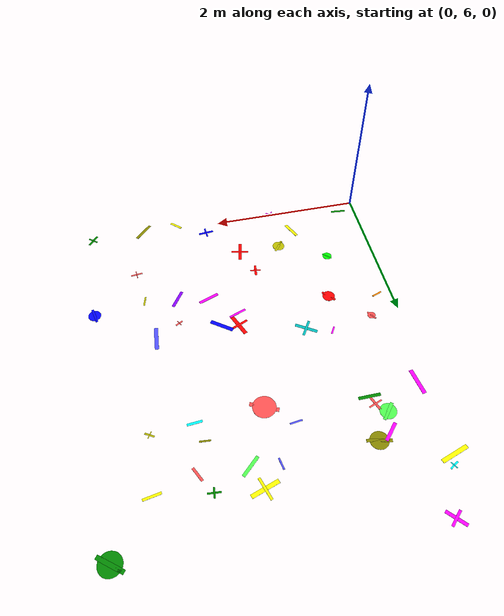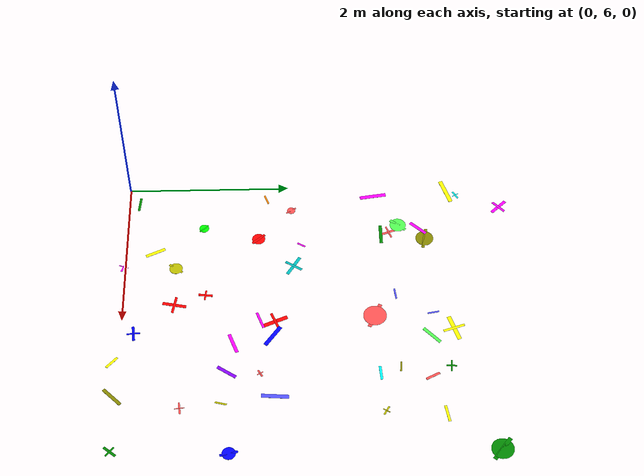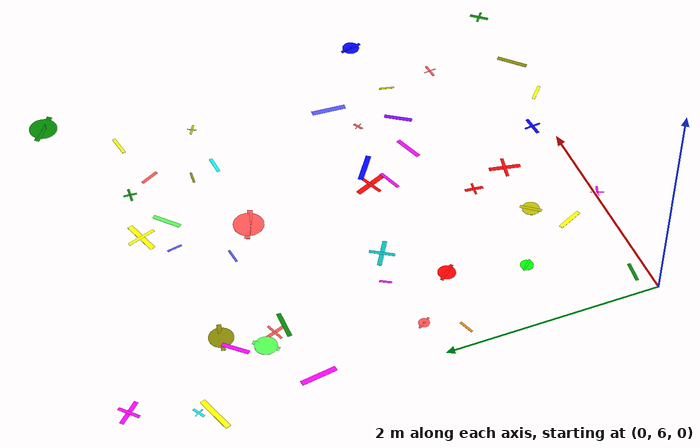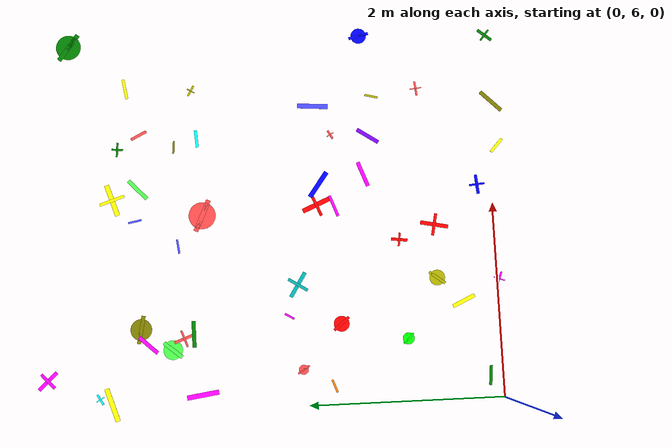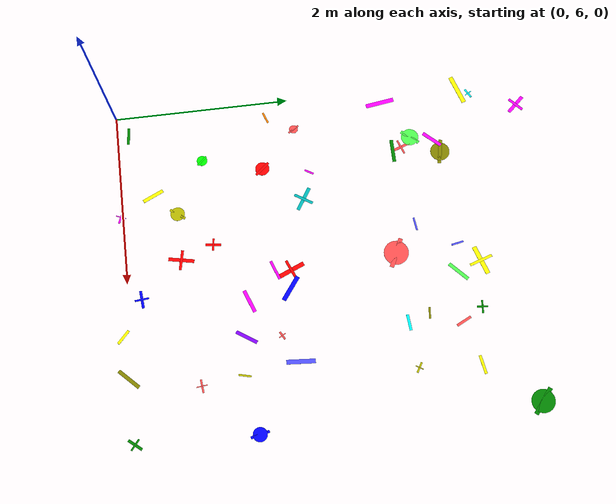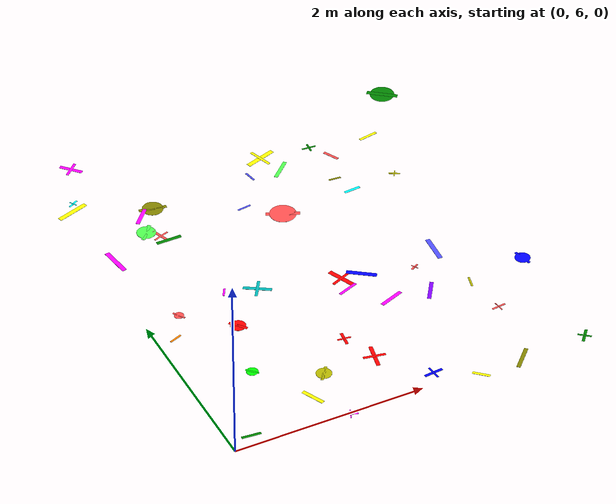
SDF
<sdf version="1.6">
 <world name="default">
  <model name="letter_N_1168">
   <static>true</static>
   <pose>0.23 6.13 0.006 0 0 6.186</pose>
   <link name="link">
    <visual name="visual">
     <geometry><box><size>0.20 0.03 0.002</size></box></geometry>
     <material>
      <ambient>0.0 0.5 0.0 1</ambient>
      <diffuse>0.0 0.5 0.0 1</diffuse>
      <specular>0.1 0.1 0.1 1</specular>
     </material>
    </visual>
   </link>
  </model>
  <model name="letter_X_1172">
   <static>true</static>
   <pose>0.19 7.73 0.010 0 0 3.495</pose>
   <link name="link">
    <visual name="visual">
     <geometry><box><size>0.14 0.02 0.002</size></box></geometry>
     <material>
      <ambient>1.0 0.5 0.0 1</ambient>
      <diffuse>1.0 0.5 0.0 1</diffuse>
      <specular>0.1 0.1 0.1 1</specular>
     </material>
    </visual>
   </link>
  </model>
  <model name="letter_Q_1173">
   <static>true</static>
   <pose>0.37 8.04 0.004 0 0 5.290</pose>
   <link name="link">
    <visual name="visual">
     <geometry><box><size>0.14 0.02 0.002</size></box></geometry>
     <material>
      <ambient>1.0 0.3 0.3 1</ambient>
      <diffuse>1.0 0.3 0.3 1</diffuse>
      <specular>0.1 0.1 0.1 1</specular>
     </material>
    </visual>
    <visual name="visual2">
     <geometry><cylinder><radius>0.05</radius><length>0.002</length></cylinder></geometry>
     <material><ambient>1.0 0.3 0.3 1</ambient><diffuse>1.0 0.3 0.3 1</diffuse></material>
    </visual>
   </link>
  </model>
  <model name="letter_P_1177">
   <static>true</static>
   <pose>0.16 9.08 0.005 0 0 4.855</pose>
   <link name="link">
    <visual name="visual">
     <geometry><box><size>0.33 0.05 0.002</size></box></geometry>
     <material>
      <ambient>1.0 0.0 1.0 1</ambient>
      <diffuse>1.0 0.0 1.0 1</diffuse>
      <specular>0.1 0.1 0.1 1</specular>
     </material>
    </visual>
   </link>
  </model>
  <model name="letter_U_1179">
   <static>true</static>
   <pose>0.10 10.01 0.005 0 0 3.457</pose>
   <link name="link">
    <visual name="visual">
     <geometry><box><size>0.35 0.05 0.002</size></box></geometry>
     <material>
      <ambient>1.0 1.0 0.0 1</ambient>
      <diffuse>1.0 1.0 0.0 1</diffuse>
      <specular>0.1 0.1 0.1 1</specular>
     </material>
    </visual>
   </link>
  </model>
  <model name="letter_H_1180">
   <static>true</static>
   <pose>0.16 10.13 0.004 0 0 3.666</pose>
   <link name="link">
    <visual name="visual">
     <geometry><box><size>0.12 0.02 0.002</size></box></geometry>
     <material>
      <ambient>0.0 1.0 1.0 1</ambient>
      <diffuse>0.0 1.0 1.0 1</diffuse>
      <specular>0.1 0.1 0.1 1</specular>
     </material>
    </visual>
    <visual name="visual2">
     <pose>0 0 0.001 0 0 1.57</pose>
     <geometry><box><size>0.09 0.01 0.001</size></box></geometry>
     <material><ambient>0.0 1.0 1.0 1</ambient><diffuse>0.0 1.0 1.0 1</diffuse></material>
    </visual>
   </link>
  </model>
  <model name="letter_I_1181">
   <static>true</static>
   <pose>0.37 10.66 0.008 0 0 2.318</pose>
   <link name="link">
    <visual name="visual">
     <geometry><box><size>0.25 0.04 0.002</size></box></geometry>
     <material>
      <ambient>1.0 0.0 1.0 1</ambient>
      <diffuse>1.0 0.0 1.0 1</diffuse>
      <specular>0.1 0.1 0.1 1</specular>
     </material>
    </visual>
    <visual name="visual2">
     <pose>0 0 0.001 0 0 1.57</pose>
     <geometry><box><size>0.20 0.03 0.001</size></box></geometry>
     <material><ambient>1.0 0.0 1.0 1</ambient><diffuse>1.0 0.0 1.0 1</diffuse></material>
    </visual>
   </link>
  </model>
  <model name="letter_L_1225">
   <static>true</static>
   <pose>1.21 5.98 0.006 0 0 5.918</pose>
   <link name="link">
    <visual name="visual">
     <geometry><box><size>0.15 0.02 0.002</size></box></geometry>
     <material>
      <ambient>1.0 0.0 1.0 1</ambient>
      <diffuse>1.0 0.0 1.0 1</diffuse>
      <specular>0.1 0.1 0.1 1</specular>
     </material>
    </visual>
    <visual name="visual2">
     <pose>0 0 0.001 0 0 1.57</pose>
     <geometry><box><size>0.12 0.01 0.001</size></box></geometry>
     <material><ambient>1.0 0.0 1.0 1</ambient><diffuse>1.0 0.0 1.0 1</diffuse></material>
    </visual>
   </link>
  </model>
  <model name="letter_W_1226">
   <static>true</static>
   <pose>1.00 6.36 0.004 0 0 5.146</pose>
   <link name="link">
    <visual name="visual">
     <geometry><box><size>0.25 0.04 0.002</size></box></geometry>
     <material>
      <ambient>1.0 1.0 0.0 1</ambient>
      <diffuse>1.0 1.0 0.0 1</diffuse>
      <specular>0.1 0.1 0.1 1</specular>
     </material>
    </visual>
   </link>
  </model>
  <model name="letter_Q_1227">
   <static>true</static>
   <pose>1.25 6.62 0.005 0 0 4.067</pose>
   <link name="link">
    <visual name="visual">
     <geometry><box><size>0.20 0.03 0.002</size></box></geometry>
     <material>
      <ambient>0.7 0.7 0.0 1</ambient>
      <diffuse>0.7 0.7 0.0 1</diffuse>
      <specular>0.1 0.1 0.1 1</specular>
     </material>
    </visual>
    <visual name="visual2">
     <geometry><cylinder><radius>0.08</radius><length>0.002</length></cylinder></geometry>
     <material><ambient>0.7 0.7 0.0 1</ambient><diffuse>0.7 0.7 0.0 1</diffuse></material>
    </visual>
   </link>
  </model>
  <model name="letter_C_1228">
   <static>true</static>
   <pose>0.64 6.95 0.012 0 0 2.322</pose>
   <link name="link">
    <visual name="visual">
     <geometry><box><size>0.14 0.02 0.002</size></box></geometry>
     <material>
      <ambient>0.0 1.0 0.0 1</ambient>
      <diffuse>0.0 1.0 0.0 1</diffuse>
      <specular>0.1 0.1 0.1 1</specular>
     </material>
    </visual>
    <visual name="visual2">
     <geometry><cylinder><radius>0.06</radius><length>0.002</length></cylinder></geometry>
     <material><ambient>0.0 1.0 0.0 1</ambient><diffuse>0.0 1.0 0.0 1</diffuse></material>
    </visual>
   </link>
  </model>
  <model name="letter_Q_1229">
   <static>true</static>
   <pose>0.82 7.63 0.011 0 0 5.411</pose>
   <link name="link">
    <visual name="visual">
     <geometry><box><size>0.20 0.03 0.002</size></box></geometry>
     <material>
      <ambient>1.0 0.0 0.0 1</ambient>
      <diffuse>1.0 0.0 0.0 1</diffuse>
      <specular>0.1 0.1 0.1 1</specular>
     </material>
    </visual>
    <visual name="visual2">
     <geometry><cylinder><radius>0.08</radius><length>0.002</length></cylinder></geometry>
     <material><ambient>1.0 0.0 0.0 1</ambient><diffuse>1.0 0.0 0.0 1</diffuse></material>
    </visual>
   </link>
  </model>
  <model name="letter_T_1230">
   <static>true</static>
   <pose>1.24 8.06 0.006 0 0 5.720</pose>
   <link name="link">
    <visual name="visual">
     <geometry><box><size>0.29 0.04 0.002</size></box></geometry>
     <material>
      <ambient>0.0 0.7 0.7 1</ambient>
      <diffuse>0.0 0.7 0.7 1</diffuse>
      <specular>0.1 0.1 0.1 1</specular>
     </material>
    </visual>
    <visual name="visual2">
     <pose>0 0 0.001 0 0 1.57</pose>
     <geometry><box><size>0.23 0.03 0.001</size></box></geometry>
     <material><ambient>0.0 0.7 0.7 1</ambient><diffuse>0.0 0.7 0.7 1</diffuse></material>
    </visual>
   </link>
  </model>
  <model name="letter_X_1231">
   <static>true</static>
   <pose>0.92 8.16 0.006 0 0 4.179</pose>
   <link name="link">
    <visual name="visual">
     <geometry><box><size>0.11 0.02 0.002</size></box></geometry>
     <material>
      <ambient>1.0 0.0 1.0 1</ambient>
      <diffuse>1.0 0.0 1.0 1</diffuse>
      <specular>0.1 0.1 0.1 1</specular>
     </material>
    </visual>
   </link>
  </model>
  <model name="letter_M_1232">
   <static>true</static>
   <pose>0.78 9.15 0.013 0 0 0.005</pose>
   <link name="link">
    <visual name="visual">
     <geometry><box><size>0.27 0.04 0.002</size></box></geometry>
     <material>
      <ambient>0.0 0.5 0.0 1</ambient>
      <diffuse>0.0 0.5 0.0 1</diffuse>
      <specular>0.1 0.1 0.1 1</specular>
     </material>
    </visual>
   </link>
  </model>
  <model name="letter_O_1233">
   <static>true</static>
   <pose>0.63 9.37 0.003 0 0 4.013</pose>
   <link name="link">
    <visual name="visual">
     <geometry><box><size>0.24 0.04 0.002</size></box></geometry>
     <material>
      <ambient>0.3 1.0 0.3 1</ambient>
      <diffuse>0.3 1.0 0.3 1</diffuse>
      <specular>0.1 0.1 0.1 1</specular>
     </material>
    </visual>
    <visual name="visual2">
     <geometry><cylinder><radius>0.10</radius><length>0.002</length></cylinder></geometry>
     <material><ambient>0.3 1.0 0.3 1</ambient><diffuse>0.3 1.0 0.3 1</diffuse></material>
    </visual>
   </link>
  </model>
  <model name="letter_H_1234">
   <static>true</static>
   <pose>0.74 9.25 0.003 0 0 1.925</pose>
   <link name="link">
    <visual name="visual">
     <geometry><box><size>0.22 0.03 0.002</size></box></geometry>
     <material>
      <ambient>1.0 0.3 0.3 1</ambient>
      <diffuse>1.0 0.3 0.3 1</diffuse>
      <specular>0.1 0.1 0.1 1</specular>
     </material>
    </visual>
    <visual name="visual2">
     <pose>0 0 0.001 0 0 1.57</pose>
     <geometry><box><size>0.18 0.02 0.001</size></box></geometry>
     <material><ambient>1.0 0.3 0.3 1</ambient><diffuse>1.0 0.3 0.3 1</diffuse></material>
    </visual>
   </link>
  </model>
  <model name="letter_R_1235">
   <static>true</static>
   <pose>0.69 9.62 0.010 0 0 3.971</pose>
   <link name="link">
    <visual name="visual">
     <geometry><box><size>0.25 0.04 0.002</size></box></geometry>
     <material>
      <ambient>1.0 0.0 1.0 1</ambient>
      <diffuse>1.0 0.0 1.0 1</diffuse>
      <specular>0.1 0.1 0.1 1</specular>
     </material>
    </visual>
   </link>
  </model>
  <model name="letter_O_1236">
   <static>true</static>
   <pose>0.85 9.69 0.007 0 0 2.945</pose>
   <link name="link">
    <visual name="visual">
     <geometry><box><size>0.29 0.04 0.002</size></box></geometry>
     <material>
      <ambient>0.5 0.5 0.0 1</ambient>
      <diffuse>0.5 0.5 0.0 1</diffuse>
      <specular>0.1 0.1 0.1 1</specular>
     </material>
    </visual>
    <visual name="visual2">
     <geometry><cylinder><radius>0.11</radius><length>0.002</length></cylinder></geometry>
     <material><ambient>0.5 0.5 0.0 1</ambient><diffuse>0.5 0.5 0.0 1</diffuse></material>
    </visual>
   </link>
  </model>
  <model name="letter_H_1288">
   <static>true</static>
   <pose>2.20 6.15 0.006 0 0 3.232</pose>
   <link name="link">
    <visual name="visual">
     <geometry><box><size>0.20 0.03 0.002</size></box></geometry>
     <material>
      <ambient>0.0 0.0 1.0 1</ambient>
      <diffuse>0.0 0.0 1.0 1</diffuse>
      <specular>0.1 0.1 0.1 1</specular>
     </material>
    </visual>
    <visual name="visual2">
     <pose>0 0 0.001 0 0 1.57</pose>
     <geometry><box><size>0.16 0.02 0.001</size></box></geometry>
     <material><ambient>0.0 0.0 1.0 1</ambient><diffuse>0.0 0.0 1.0 1</diffuse></material>
    </visual>
   </link>
  </model>
  <model name="letter_A_1291">
   <static>true</static>
   <pose>1.66 6.99 0.006 0 0 4.591</pose>
   <link name="link">
    <visual name="visual">
     <geometry><box><size>0.17 0.03 0.002</size></box></geometry>
     <material>
      <ambient>1.0 0.0 0.0 1</ambient>
      <diffuse>1.0 0.0 0.0 1</diffuse>
      <specular>0.1 0.1 0.1 1</specular>
     </material>
    </visual>
    <visual name="visual2">
     <pose>0 0 0.001 0 0 1.57</pose>
     <geometry><box><size>0.14 0.02 0.001</size></box></geometry>
     <material><ambient>1.0 0.0 0.0 1</ambient><diffuse>1.0 0.0 0.0 1</diffuse></material>
    </visual>
   </link>
  </model>
  <model name="letter_A_1292">
   <static>true</static>
   <pose>1.80 6.62 0.011 0 0 4.514</pose>
   <link name="link">
    <visual name="visual">
     <geometry><box><size>0.29 0.04 0.002</size></box></geometry>
     <material>
      <ambient>1.0 0.0 0.0 1</ambient>
      <diffuse>1.0 0.0 0.0 1</diffuse>
      <specular>0.1 0.1 0.1 1</specular>
     </material>
    </visual>
    <visual name="visual2">
     <pose>0 0 0.001 0 0 1.57</pose>
     <geometry><box><size>0.23 0.03 0.001</size></box></geometry>
     <material><ambient>1.0 0.0 0.0 1</ambient><diffuse>1.0 0.0 0.0 1</diffuse></material>
    </visual>
   </link>
  </model>
  <model name="letter_M_1293">
   <static>true</static>
   <pose>2.36 7.33 0.003 0 0 3.499</pose>
   <link name="link">
    <visual name="visual">
     <geometry><box><size>0.27 0.04 0.002</size></box></geometry>
     <material>
      <ambient>1.0 0.0 1.0 1</ambient>
      <diffuse>1.0 0.0 1.0 1</diffuse>
      <specular>0.1 0.1 0.1 1</specular>
     </material>
    </visual>
   </link>
  </model>
  <model name="letter_X_1294">
   <static>true</static>
   <pose>2.27 7.80 0.009 0 0 5.653</pose>
   <link name="link">
    <visual name="visual">
     <geometry><box><size>0.31 0.05 0.002</size></box></geometry>
     <material>
      <ambient>0.0 0.0 1.0 1</ambient>
      <diffuse>0.0 0.0 1.0 1</diffuse>
      <specular>0.1 0.1 0.1 1</specular>
     </material>
    </visual>
   </link>
  </model>
  <model name="letter_T_1295">
   <static>true</static>
   <pose>2.06 7.83 0.003 0 0 1.974</pose>
   <link name="link">
    <visual name="visual">
     <geometry><box><size>0.31 0.05 0.002</size></box></geometry>
     <material>
      <ambient>1.0 0.0 0.0 1</ambient>
      <diffuse>1.0 0.0 0.0 1</diffuse>
      <specular>0.1 0.1 0.1 1</specular>
     </material>
    </visual>
    <visual name="visual2">
     <pose>0 0 0.001 0 0 1.57</pose>
     <geometry><box><size>0.25 0.03 0.001</size></box></geometry>
     <material><ambient>1.0 0.0 0.0 1</ambient><diffuse>1.0 0.0 0.0 1</diffuse></material>
    </visual>
   </link>
  </model>
  <model name="letter_N_1296">
   <static>true</static>
   <pose>2.04 7.65 0.007 0 0 3.497</pose>
   <link name="link">
    <visual name="visual">
     <geometry><box><size>0.23 0.03 0.002</size></box></geometry>
     <material>
      <ambient>1.0 0.0 1.0 1</ambient>
      <diffuse>1.0 0.0 1.0 1</diffuse>
      <specular>0.1 0.1 0.1 1</specular>
     </material>
    </visual>
   </link>
  </model>
  <model name="letter_G_1297">
   <static>true</static>
   <pose>2.00 9.02 0.004 0 0 2.717</pose>
   <link name="link">
    <visual name="visual">
     <geometry><box><size>0.35 0.05 0.002</size></box></geometry>
     <material>
      <ambient>1.0 0.3 0.3 1</ambient>
      <diffuse>1.0 0.3 0.3 1</diffuse>
      <specular>0.1 0.1 0.1 1</specular>
     </material>
    </visual>
    <visual name="visual2">
     <geometry><cylinder><radius>0.14</radius><length>0.002</length></cylinder></geometry>
     <material><ambient>1.0 0.3 0.3 1</ambient><diffuse>1.0 0.3 0.3 1</diffuse></material>
    </visual>
   </link>
  </model>
  <model name="letter_X_1298">
   <static>true</static>
   <pose>1.69 9.28 0.008 0 0 3.265</pose>
   <link name="link">
    <visual name="visual">
     <geometry><box><size>0.15 0.02 0.002</size></box></geometry>
     <material>
      <ambient>0.3 0.3 1.0 1</ambient>
      <diffuse>0.3 0.3 1.0 1</diffuse>
      <specular>0.1 0.1 0.1 1</specular>
     </material>
    </visual>
   </link>
  </model>
  <model name="letter_V_1299">
   <static>true</static>
   <pose>1.97 9.72 0.004 0 0 4.895</pose>
   <link name="link">
    <visual name="visual">
     <geometry><box><size>0.14 0.02 0.002</size></box></geometry>
     <material>
      <ambient>0.3 0.3 1.0 1</ambient>
      <diffuse>0.3 0.3 1.0 1</diffuse>
      <specular>0.1 0.1 0.1 1</specular>
     </material>
    </visual>
   </link>
  </model>
  <model name="letter_I_1300">
   <static>true</static>
   <pose>2.20 9.95 0.005 0 0 3.460</pose>
   <link name="link">
    <visual name="visual">
     <geometry><box><size>0.34 0.05 0.002</size></box></geometry>
     <material>
      <ambient>1.0 1.0 0.0 1</ambient>
      <diffuse>1.0 1.0 0.0 1</diffuse>
      <specular>0.1 0.1 0.1 1</specular>
     </material>
    </visual>
    <visual name="visual2">
     <pose>0 0 0.001 0 0 1.57</pose>
     <geometry><box><size>0.27 0.03 0.001</size></box></geometry>
     <material><ambient>1.0 1.0 0.0 1</ambient><diffuse>1.0 1.0 0.0 1</diffuse></material>
    </visual>
   </link>
  </model>
  <model name="letter_Y_1301">
   <static>true</static>
   <pose>2.30 9.68 0.009 0 0 3.893</pose>
   <link name="link">
    <visual name="visual">
     <geometry><box><size>0.27 0.04 0.002</size></box></geometry>
     <material>
      <ambient>0.3 1.0 0.3 1</ambient>
      <diffuse>0.3 1.0 0.3 1</diffuse>
      <specular>0.1 0.1 0.1 1</specular>
     </material>
    </visual>
   </link>
  </model>
  <model name="letter_N_1361">
   <static>true</static>
   <pose>3.07 5.95 0.009 0 0 0.793</pose>
   <link name="link">
    <visual name="visual">
     <geometry><box><size>0.29 0.04 0.002</size></box></geometry>
     <material>
      <ambient>0.5 0.5 0.0 1</ambient>
      <diffuse>0.5 0.5 0.0 1</diffuse>
      <specular>0.1 0.1 0.1 1</specular>
     </material>
    </visual>
   </link>
  </model>
  <model name="letter_S_1362">
   <static>true</static>
   <pose>2.60 5.92 0.007 0 0 2.397</pose>
   <link name="link">
    <visual name="visual">
     <geometry><box><size>0.18 0.03 0.002</size></box></geometry>
     <material>
      <ambient>1.0 1.0 0.0 1</ambient>
      <diffuse>1.0 1.0 0.0 1</diffuse>
      <specular>0.1 0.1 0.1 1</specular>
     </material>
    </visual>
   </link>
  </model>
  <model name="letter_F_1363">
   <static>true</static>
   <pose>3.24 6.73 0.012 0 0 0.110</pose>
   <link name="link">
    <visual name="visual">
     <geometry><box><size>0.15 0.02 0.002</size></box></geometry>
     <material>
      <ambient>1.0 0.3 0.3 1</ambient>
      <diffuse>1.0 0.3 0.3 1</diffuse>
      <specular>0.1 0.1 0.1 1</specular>
     </material>
    </visual>
    <visual name="visual2">
     <pose>0 0 0.001 0 0 1.57</pose>
     <geometry><box><size>0.12 0.01 0.001</size></box></geometry>
     <material><ambient>1.0 0.3 0.3 1</ambient><diffuse>1.0 0.3 0.3 1</diffuse></material>
    </visual>
   </link>
  </model>
  <model name="letter_P_1364">
   <static>true</static>
   <pose>2.76 7.26 0.007 0 0 4.125</pose>
   <link name="link">
    <visual name="visual">
     <geometry><box><size>0.26 0.04 0.002</size></box></geometry>
     <material>
      <ambient>0.5 0.0 1.0 1</ambient>
      <diffuse>0.5 0.0 1.0 1</diffuse>
      <specular>0.1 0.1 0.1 1</specular>
     </material>
    </visual>
   </link>
  </model>
  <model name="letter_K_1365">
   <static>true</static>
   <pose>3.18 7.20 0.005 0 0 1.325</pose>
   <link name="link">
    <visual name="visual">
     <geometry><box><size>0.14 0.02 0.002</size></box></geometry>
     <material>
      <ambient>0.7 0.7 0.0 1</ambient>
      <diffuse>0.7 0.7 0.0 1</diffuse>
      <specular>0.1 0.1 0.1 1</specular>
     </material>
    </visual>
   </link>
  </model>
  <model name="letter_R_1366">
   <static>true</static>
   <pose>3.10 7.82 0.008 0 0 1.498</pose>
   <link name="link">
    <visual name="visual">
     <geometry><box><size>0.32 0.05 0.002</size></box></geometry>
     <material>
      <ambient>0.3 0.3 1.0 1</ambient>
      <diffuse>0.3 0.3 1.0 1</diffuse>
      <specular>0.1 0.1 0.1 1</specular>
     </material>
    </visual>
   </link>
  </model>
  <model name="letter_H_1367">
   <static>true</static>
   <pose>2.79 7.65 0.012 0 0 0.515</pose>
   <link name="link">
    <visual name="visual">
     <geometry><box><size>0.10 0.02 0.002</size></box></geometry>
     <material>
      <ambient>1.0 0.3 0.3 1</ambient>
      <diffuse>1.0 0.3 0.3 1</diffuse>
      <specular>0.1 0.1 0.1 1</specular>
     </material>
    </visual>
    <visual name="visual2">
     <pose>0 0 0.001 0 0 1.57</pose>
     <geometry><box><size>0.08 0.01 0.001</size></box></geometry>
     <material><ambient>1.0 0.3 0.3 1</ambient><diffuse>1.0 0.3 0.3 1</diffuse></material>
    </visual>
   </link>
  </model>
  <model name="letter_D_1368">
   <static>true</static>
   <pose>2.81 9.05 0.006 0 0 3.223</pose>
   <link name="link">
    <visual name="visual">
     <geometry><box><size>0.18 0.03 0.002</size></box></geometry>
     <material>
      <ambient>0.0 1.0 1.0 1</ambient>
      <diffuse>0.0 1.0 1.0 1</diffuse>
      <specular>0.1 0.1 0.1 1</specular>
     </material>
    </visual>
   </link>
  </model>
  <model name="letter_I_1369">
   <static>true</static>
   <pose>3.32 9.09 0.010 0 0 2.605</pose>
   <link name="link">
    <visual name="visual">
     <geometry><box><size>0.12 0.02 0.002</size></box></geometry>
     <material>
      <ambient>0.7 0.7 0.0 1</ambient>
      <diffuse>0.7 0.7 0.0 1</diffuse>
      <specular>0.1 0.1 0.1 1</specular>
     </material>
    </visual>
    <visual name="visual2">
     <pose>0 0 0.001 0 0 1.57</pose>
     <geometry><box><size>0.09 0.01 0.001</size></box></geometry>
     <material><ambient>0.7 0.7 0.0 1</ambient><diffuse>0.7 0.7 0.0 1</diffuse></material>
    </visual>
   </link>
  </model>
  <model name="letter_R_1370">
   <static>true</static>
   <pose>2.73 9.29 0.009 0 0 3.057</pose>
   <link name="link">
    <visual name="visual">
     <geometry><box><size>0.13 0.02 0.002</size></box></geometry>
     <material>
      <ambient>0.5 0.5 0.0 1</ambient>
      <diffuse>0.5 0.5 0.0 1</diffuse>
      <specular>0.1 0.1 0.1 1</specular>
     </material>
    </visual>
   </link>
  </model>
  <model name="letter_K_1371">
   <static>true</static>
   <pose>2.87 9.65 0.013 0 0 2.035</pose>
   <link name="link">
    <visual name="visual">
     <geometry><box><size>0.18 0.03 0.002</size></box></geometry>
     <material>
      <ambient>1.0 0.3 0.3 1</ambient>
      <diffuse>1.0 0.3 0.3 1</diffuse>
      <specular>0.1 0.1 0.1 1</specular>
     </material>
    </visual>
   </link>
  </model>
  <model name="letter_S_1372">
   <static>true</static>
   <pose>3.37 9.78 0.007 0 0 3.311</pose>
   <link name="link">
    <visual name="visual">
     <geometry><box><size>0.21 0.03 0.002</size></box></geometry>
     <material>
      <ambient>1.0 1.0 0.0 1</ambient>
      <diffuse>1.0 1.0 0.0 1</diffuse>
      <specular>0.1 0.1 0.1 1</specular>
     </material>
    </visual>
   </link>
  </model>
  <model name="letter_F_1373">
   <static>true</static>
   <pose>2.73 9.88 0.008 0 0 3.059</pose>
   <link name="link">
    <visual name="visual">
     <geometry><box><size>0.15 0.02 0.002</size></box></geometry>
     <material>
      <ambient>0.0 0.5 0.0 1</ambient>
      <diffuse>0.0 0.5 0.0 1</diffuse>
      <specular>0.1 0.1 0.1 1</specular>
     </material>
    </visual>
    <visual name="visual2">
     <pose>0 0 0.001 0 0 1.57</pose>
     <geometry><box><size>0.12 0.02 0.001</size></box></geometry>
     <material><ambient>0.0 0.5 0.0 1</ambient><diffuse>0.0 0.5 0.0 1</diffuse></material>
    </visual>
   </link>
  </model>
  <model name="letter_I_1437">
   <static>true</static>
   <pose>3.78 5.97 0.006 0 0 0.888</pose>
   <link name="link">
    <visual name="visual">
     <geometry><box><size>0.18 0.03 0.002</size></box></geometry>
     <material>
      <ambient>0.0 0.5 0.0 1</ambient>
      <diffuse>0.0 0.5 0.0 1</diffuse>
      <specular>0.1 0.1 0.1 1</specular>
     </material>
    </visual>
    <visual name="visual2">
     <pose>0 0 0.001 0 0 1.57</pose>
     <geometry><box><size>0.14 0.02 0.001</size></box></geometry>
     <material><ambient>0.0 0.5 0.0 1</ambient><diffuse>0.0 0.5 0.0 1</diffuse></material>
    </visual>
   </link>
  </model>
  <model name="letter_Q_1440">
   <static>true</static>
   <pose>3.83 7.30 0.003 0 0 1.800</pose>
   <link name="link">
    <visual name="visual">
     <geometry><box><size>0.21 0.03 0.002</size></box></geometry>
     <material>
      <ambient>0.0 0.0 1.0 1</ambient>
      <diffuse>0.0 0.0 1.0 1</diffuse>
      <specular>0.1 0.1 0.1 1</specular>
     </material>
    </visual>
    <visual name="visual2">
     <geometry><cylinder><radius>0.08</radius><length>0.002</length></cylinder></geometry>
     <material><ambient>0.0 0.0 1.0 1</ambient><diffuse>0.0 0.0 1.0 1</diffuse></material>
    </visual>
   </link>
  </model>
  <model name="letter_G_1445">
   <static>true</static>
   <pose>3.84 10.36 0.009 0 0 5.623</pose>
   <link name="link">
    <visual name="visual">
     <geometry><box><size>0.33 0.05 0.002</size></box></geometry>
     <material>
      <ambient>0.0 0.5 0.0 1</ambient>
      <diffuse>0.0 0.5 0.0 1</diffuse>
      <specular>0.1 0.1 0.1 1</specular>
     </material>
    </visual>
    <visual name="visual2">
     <geometry><cylinder><radius>0.13</radius><length>0.002</length></cylinder></geometry>
     <material><ambient>0.0 0.5 0.0 1</ambient><diffuse>0.0 0.5 0.0 1</diffuse></material>
    </visual>
   </link>
  </model>
 </world>
</sdf>
